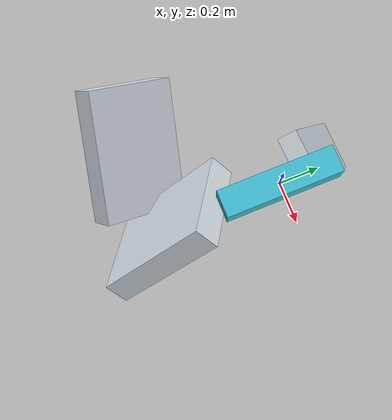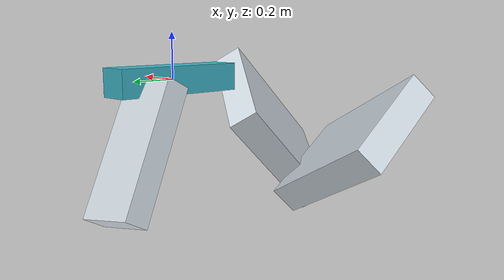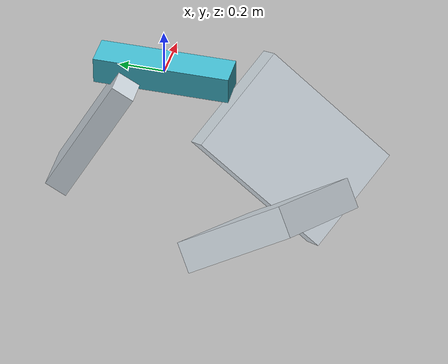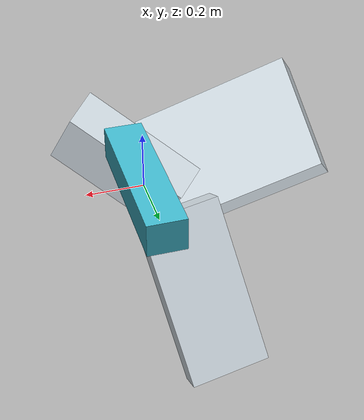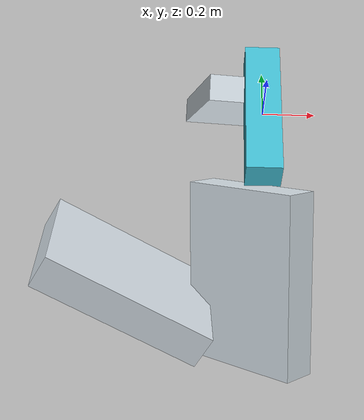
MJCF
<mujoco model="criatura">
  <compiler angle="degree" autolimits="true"/>
  <option timestep="0.002083" gravity="0 0 0" integrator="implicitfast"/>
  <default>
    <geom type="box" density="300.0" rgba="0.85 0.89 0.92 1"/>
    <joint type="hinge"/>
    <motor ctrlrange="-1 1"/>
  </default>
  <worldbody>
    <body name="p0_n0" pos="0.00000 0.00000 0.00000" quat="1.000000 0.000000 0.000000 0.000000">
      <freejoint name="raiz"/>
      <geom name="g_p0_n0" size="0.06863 0.29517 0.06031" rgba="0.25 0.72 0.8 1"/>
      <body name="p1_n1" pos="-0.12123 0.27719 -0.26373" quat="0.621541 0.170232 0.741183 0.188033">
        <joint name="p1_n1_j0" axis="0.0000 -1.0000 0.0000" pos="-0.31046 0 0" range="-39.04 39.04" damping="1.4143"/>
        <joint name="p1_n1_j1" axis="0.0000 0.0000 1.0000" pos="-0.31046 0 0" range="-39.04 39.04" damping="1.4143"/>
        <geom name="g_p1_n1" size="0.29046 0.05191 0.13621"/>
      </body>
      <body name="p2_n2" pos="-0.03830 -0.56371 -0.27813" quat="0.718075 -0.018567 0.485265 -0.498540">
        <joint name="p2_n2_j0" axis="1.0000 0.0000 0.0000" pos="-0.36587 0 0" range="-39.11 39.11" damping="3.3319"/>
        <joint name="p2_n2_j1" axis="0.0000 0.0000 1.0000" pos="-0.36587 0 0" range="-39.11 39.11" damping="3.3319"/>
        <geom name="g_p2_n2" size="0.34587 0.06722 0.24785"/>
        <body name="p3_n2" pos="0.01730 -0.32622 -0.34485" quat="0.076133 -0.496778 0.776684 0.379706">
          <joint name="p3_n2_j0" axis="1.0000 0.0000 0.0000" pos="-0.36282 0 0" range="-39.11 39.11" damping="3.2734"/>
          <joint name="p3_n2_j1" axis="0.0000 0.0000 1.0000" pos="-0.36282 0 0" range="-39.11 39.11" damping="3.2734"/>
          <geom name="g_p3_n2" size="0.34282 0.06662 0.24566"/>
        </body>
      </body>
    </body>
  </worldbody>
  <actuator>
    <motor name="m_p1_n1_j0" joint="p1_n1_j0" gear="-28.2854"/>
    <motor name="m_p1_n1_j1" joint="p1_n1_j1" gear="-28.2854"/>
    <motor name="m_p2_n2_j0" joint="p2_n2_j0" gear="-66.6384"/>
    <motor name="m_p2_n2_j1" joint="p2_n2_j1" gear="-66.6384"/>
    <motor name="m_p3_n2_j0" joint="p3_n2_j0" gear="-65.4681"/>
    <motor name="m_p3_n2_j1" joint="p3_n2_j1" gear="-65.4681"/>
  </actuator>
</mujoco>
